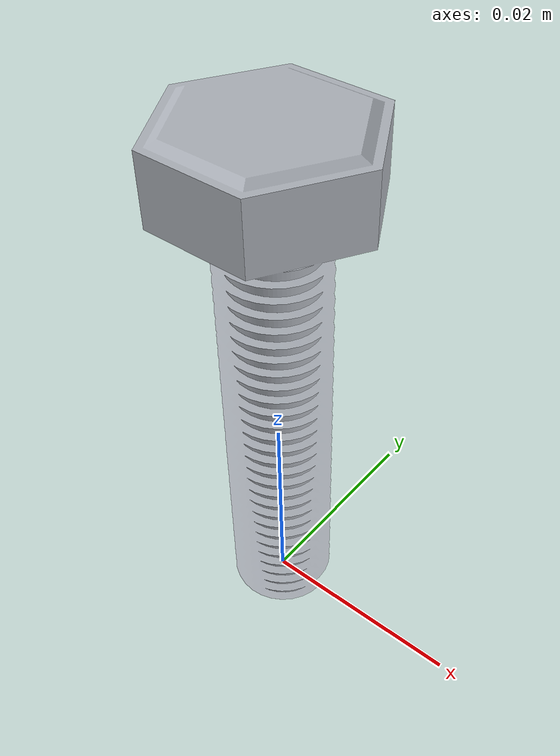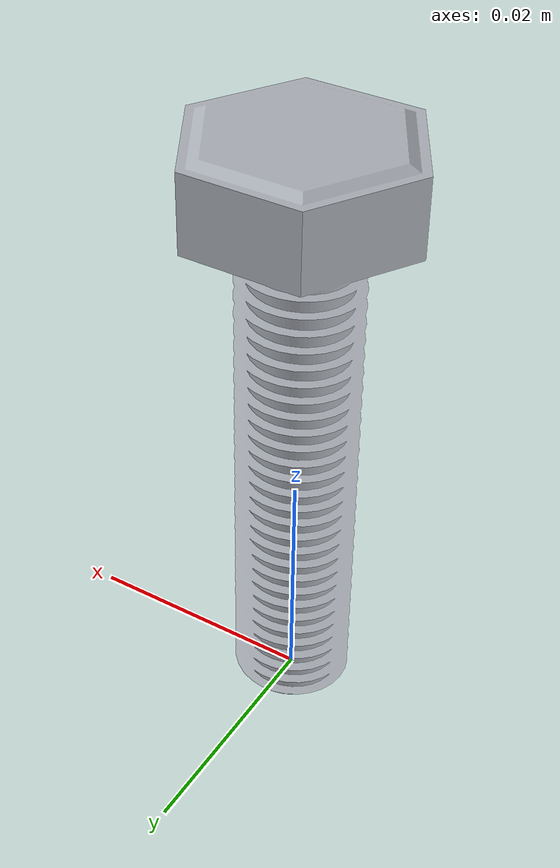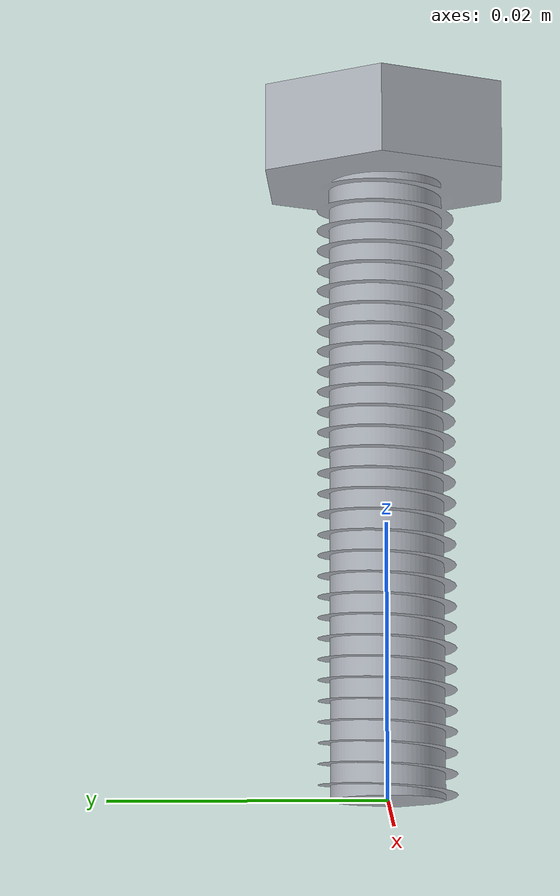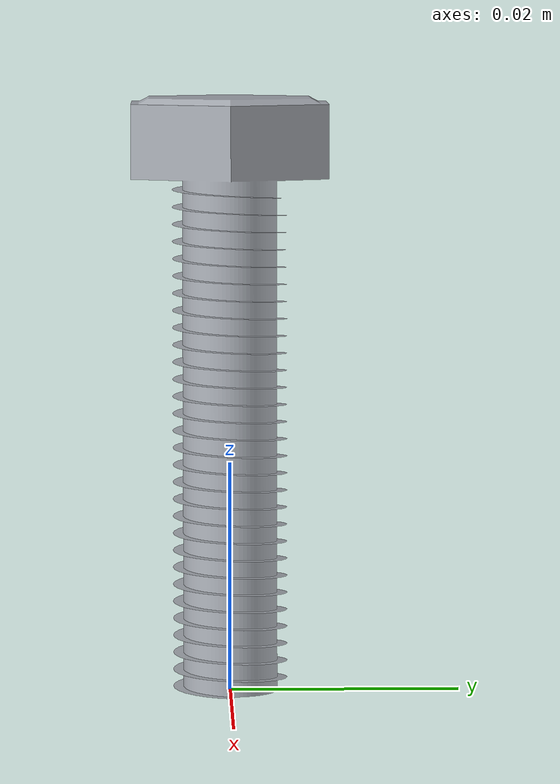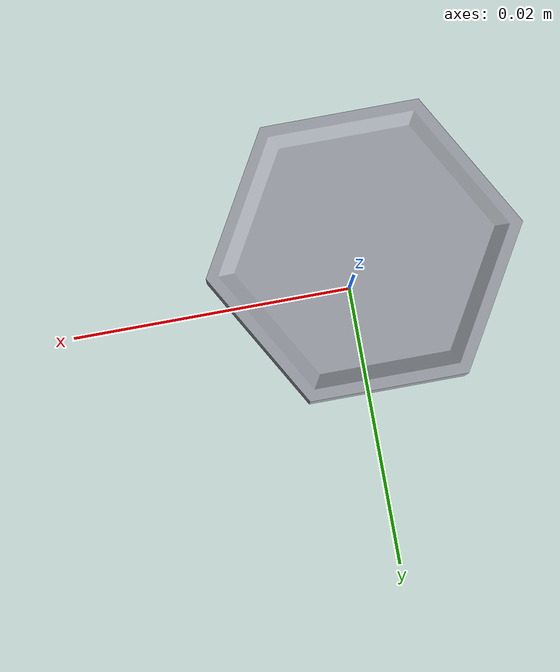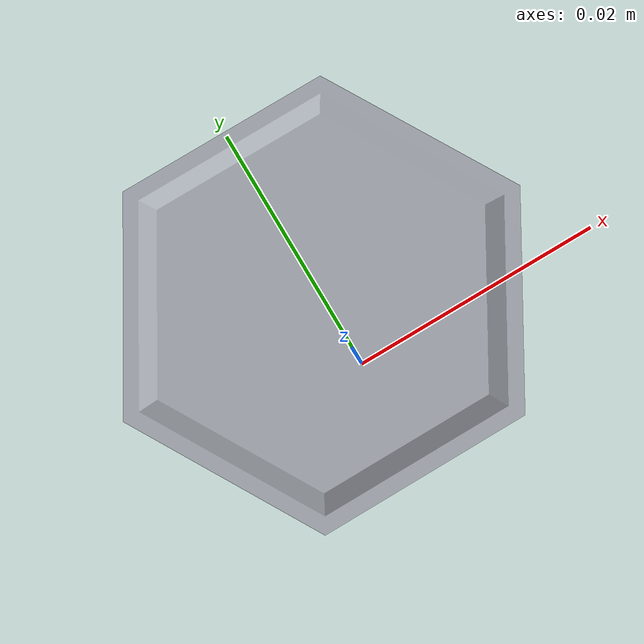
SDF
<?xml version="1.0"?>
<sdf version="1.6">
  <model name="m10_bolt_45">
    <static>false</static>
    <link name="link">
      <inertial>
        <pose>1.04783003e-11 1.63526165e-12 0.0332027193 0 0 0</pose>
        <mass>0.0320162649</mass>
        <inertia>
          <ixx>8.7585218e-06</ixx><ixy>-1.60172283e-15</ixy><ixz>7.23979086e-15</ixz>
          <iyy>8.7585216e-06</iyy><iyz>-1.47963772e-10</iyz><izz>6.84316726e-07</izz>
        </inertia>
      </inertial>
      <visual name="threaded_visual">
        <geometry><mesh><uri>model://m10_bolt_45/meshes/m10_bolt_45.stl</uri><scale>0.001 0.001 0.001</scale></mesh></geometry>
        <material>
          <ambient>0.42 0.43 0.45 1</ambient>
          <diffuse>0.68 0.70 0.73 1</diffuse>
          <specular>0.85 0.85 0.85 1</specular>
        </material>
      </visual>
      <collision name="shaft_collision">
        <pose>0 0 0.022500 0 0 0</pose>
        <geometry><cylinder><radius>0.004600</radius><length>0.045000</length></cylinder></geometry>
        <surface><friction><ode><mu>0.8</mu><mu2>0.8</mu2></ode></friction></surface>
      </collision>
      <collision name="head_collision">
        <pose>0 0 0.048425 0 0 0</pose>
        <geometry><cylinder><radius>0.009815</radius><length>0.006850</length></cylinder></geometry>
        <surface><friction><ode><mu>0.8</mu><mu2>0.8</mu2></ode></friction></surface>
      </collision>
      <velocity_decay><linear>0.03</linear><angular>0.05</angular></velocity_decay>
    </link>
  </model>
</sdf>
